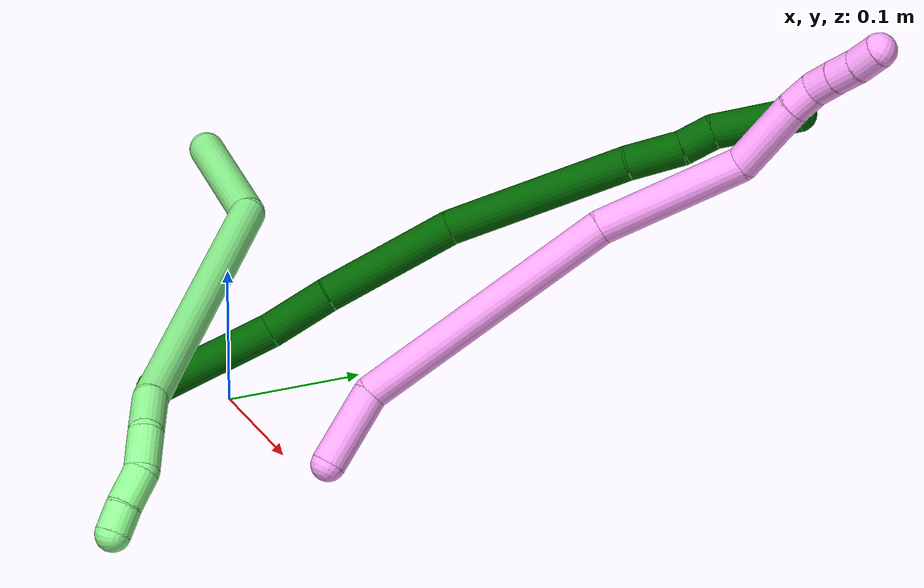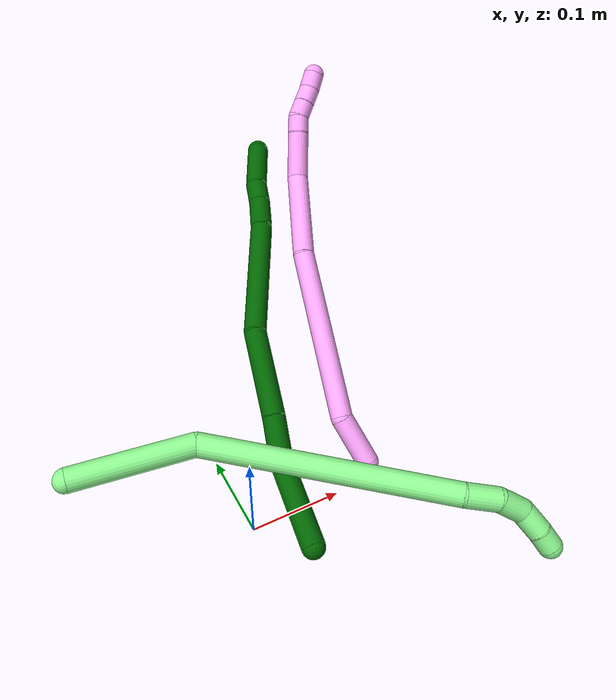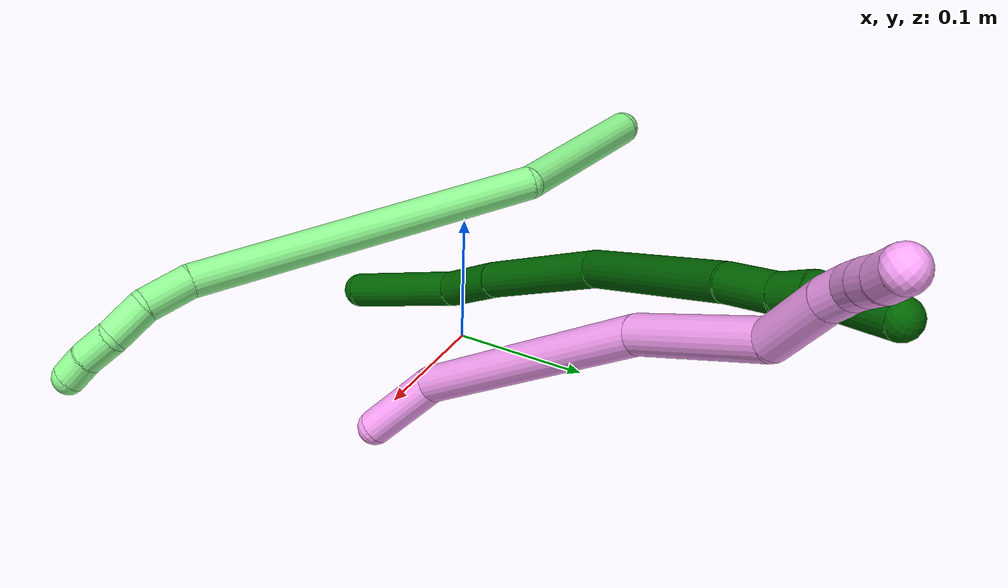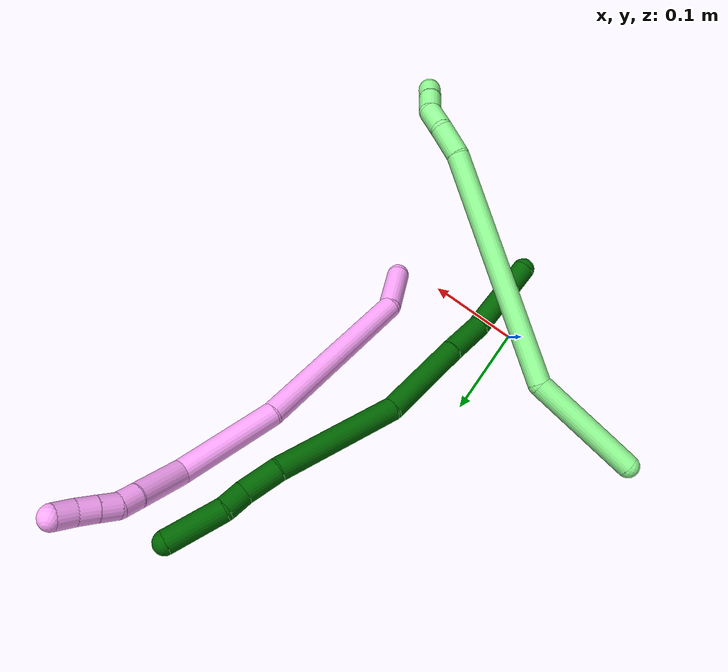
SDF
<sdf version="1.7">
 <world name="default">
  <model name="photoneo_s_sensor">
   <static>1</static>
   <pose>0 0 2 1.57079 1.57079 3.14159</pose>
   <link name="link">
    <inertial><mass>0.1</mass></inertial>
    <sensor name="sensor" type="depth">
     <update_rate>30</update_rate>
     <camera>
      <horizontal_fov>1.22</horizontal_fov>
      <image><width>1920</width><height>1200</height><format>B8G8R8</format></image>
      <clip><near>0.1</near><far>4</far></clip>
      <depth_camera><output>points</output></depth_camera>
     </camera>
     <plugin name="camera_plugin" filename="libgazebo_ros_depth_camera.so">
      <baseline>0.2</baseline>
      <alwaysOn>1</alwaysOn>
      <updateRate>0.0</updateRate>
      <cameraName>camera_ir</cameraName>
      <imageTopicName>/camera/color/image_raw</imageTopicName>
      <cameraInfoTopicName>/camera/color/camera_info</cameraInfoTopicName>
      <depthImageTopicName>/camera/depth/image_raw</depthImageTopicName>
      <depthImageCameraInfoTopicName>/camera/depth/camera_info</depthImageCameraInfoTopicName>
      <pointCloudTopicName>/camera/depth/points</pointCloudTopicName>
      <frameName>fr_optical</frameName>
      <pointCloudCutoff>0.1</pointCloudCutoff>
      <pointCloudCutoffMax>2.0</pointCloudCutoffMax>
      <distortionK1>0</distortionK1>
      <distortionK2>0</distortionK2>
      <distortionK3>0</distortionK3>
      <distortionT1>0</distortionT1>
      <distortionT2>0</distortionT2>
      <CxPrime>0</CxPrime>
      <Cx>0</Cx>
      <Cy>0</Cy>
      <focalLength>0</focalLength>
      <hackBaseline>0</hackBaseline>
     </plugin>
    </sensor>
   </link>
  </model>
  <model name="bin">
   <static>1</static>
   <link name="bottom">
    <collision name="collision-bottom">
     <pose>0 0 -0.01 0 -0 0</pose>
     <geometry><box><size>0.8 0.6 0.02</size></box></geometry>
     <surface>
      <friction><ode><mu>100</mu><mu2>100</mu2></ode></friction>
      <contact><collide_bitmask>65535</collide_bitmask></contact>
     </surface>
    </collision>
   </link>
   <link name="west_wall">
    <collision name="collision-west_wall">
     <pose>-0.41 0 0.1 0 -0 0</pose>
     <geometry><box><size>0.02 0.6 0.2</size></box></geometry>
     <surface>
      <friction><ode><mu>100</mu><mu2>100</mu2></ode></friction>
      <contact><collide_bitmask>65535</collide_bitmask></contact>
     </surface>
    </collision>
   </link>
   <link name="east_wall">
    <collision name="collision-east_wall">
     <pose>0.41 0 0.1 0 -0 0</pose>
     <geometry><box><size>0.02 0.6 0.2</size></box></geometry>
     <surface>
      <friction><ode><mu>100</mu><mu2>100</mu2></ode></friction>
      <contact><collide_bitmask>65535</collide_bitmask></contact>
     </surface>
    </collision>
   </link>
   <link name="south_wall">
    <collision name="collision-south_wall">
     <pose>0 -0.31 0.1 0 -0 0</pose>
     <geometry><box><size>0.8 0.02 0.2</size></box></geometry>
     <surface>
      <friction><ode><mu>100</mu><mu2>100</mu2></ode></friction>
      <contact><collide_bitmask>65535</collide_bitmask></contact>
     </surface>
    </collision>
   </link>
   <link name="north_wall">
    <collision name="collision-north_wall">
     <pose>0 0.31 0.1 0 -0 0</pose>
     <geometry><box><size>0.8 0.02 0.2</size></box></geometry>
     <surface>
      <friction><ode><mu>100</mu><mu2>100</mu2></ode></friction>
      <contact><collide_bitmask>65535</collide_bitmask></contact>
     </surface>
    </collision>
   </link>
  </model>
  <model name="4">
   <static>0</static>
   <link name="4">
    <collision name="collision-cylinder-e_1_1_4">
     <pose>-0.001779 -0.000878 -0.028773 3.11108 -0.061709 -2.22338</pose>
     <geometry><cylinder><radius>0.0125</radius><length>0.057683</length></cylinder></geometry>
     <surface>
      <friction><ode><mu>1.16</mu><mu2>1.16</mu2><slip1>0</slip1><slip2>0</slip2></ode></friction>
      <contact><ode><kp>1e+06</kp><kd>1</kd><max_vel>0</max_vel><min_depth>0.001</min_depth></ode></contact>
     </surface>
    </collision>
    <visual name="visual-cylinder-e_1_1_4">
     <pose>-0.001779 -0.000878 -0.028773 3.11108 -0.061709 -2.22338</pose>
     <geometry><cylinder><radius>0.0125</radius><length>0.057683</length></cylinder></geometry>
     <material><ambient>1 0.65098 0.996078 1</ambient></material>
    </visual>
    <collision name="collision-cylinder-e_2_4_5">
     <pose>-0.035442 -0.03974 -0.143108 2.7238 -0.328277 -1.32648</pose>
     <geometry><cylinder><radius>0.0125</radius><length>0.197789</length></cylinder></geometry>
     <surface>
      <friction><ode><mu>1.16</mu><mu2>1.16</mu2><slip1>0</slip1><slip2>0</slip2></ode></friction>
      <contact><ode><kp>1e+06</kp><kd>1</kd><max_vel>0</max_vel><min_depth>0.001</min_depth></ode></contact>
     </surface>
    </collision>
    <visual name="visual-cylinder-e_2_4_5">
     <pose>-0.035442 -0.03974 -0.143108 2.7238 -0.328277 -1.32648</pose>
     <geometry><cylinder><radius>0.0125</radius><length>0.197789</length></cylinder></geometry>
     <material><ambient>1 0.65098 0.996078 1</ambient></material>
    </visual>
    <collision name="collision-cylinder-e_3_5_6">
     <pose>-0.090907 -0.105612 -0.268307 2.52845 -0.452817 -1.25816</pose>
     <geometry><cylinder><radius>0.0125</radius><length>0.107797</length></cylinder></geometry>
     <surface>
      <friction><ode><mu>1.16</mu><mu2>1.16</mu2><slip1>0</slip1><slip2>0</slip2></ode></friction>
      <contact><ode><kp>1e+06</kp><kd>1</kd><max_vel>0</max_vel><min_depth>0.001</min_depth></ode></contact>
     </surface>
    </collision>
    <visual name="visual-cylinder-e_3_5_6">
     <pose>-0.090907 -0.105612 -0.268307 2.52845 -0.452817 -1.25816</pose>
     <geometry><cylinder><radius>0.0125</radius><length>0.107797</length></cylinder></geometry>
     <material><ambient>1 0.65098 0.996078 1</ambient></material>
    </visual>
    <collision name="collision-cylinder-e_4_6_7">
     <pose>-0.114594 -0.14868 -0.331256 2.56442 -0.003811 -0.012838</pose>
     <geometry><cylinder><radius>0.0125</radius><length>0.055634</length></cylinder></geometry>
     <surface>
      <friction><ode><mu>1.16</mu><mu2>1.16</mu2><slip1>0</slip1><slip2>0</slip2></ode></friction>
      <contact><ode><kp>1e+06</kp><kd>1</kd><max_vel>0</max_vel><min_depth>0.001</min_depth></ode></contact>
     </surface>
    </collision>
    <visual name="visual-cylinder-e_4_6_7">
     <pose>-0.114594 -0.14868 -0.331256 2.56442 -0.003811 -0.012838</pose>
     <geometry><cylinder><radius>0.0125</radius><length>0.055634</length></cylinder></geometry>
     <material><ambient>1 0.65098 0.996078 1</ambient></material>
    </visual>
    <collision name="collision-cylinder-e_5_7_8">
     <pose>-0.115831 -0.169605 -0.36287 2.53621 -0.111526 -0.353757</pose>
     <geometry><cylinder><radius>0.0125</radius><length>0.020322</length></cylinder></geometry>
     <surface>
      <friction><ode><mu>1.16</mu><mu2>1.16</mu2><slip1>0</slip1><slip2>0</slip2></ode></friction>
      <contact><ode><kp>1e+06</kp><kd>1</kd><max_vel>0</max_vel><min_depth>0.001</min_depth></ode></contact>
     </surface>
    </collision>
    <visual name="visual-cylinder-e_5_7_8">
     <pose>-0.115831 -0.169605 -0.36287 2.53621 -0.111526 -0.353757</pose>
     <geometry><cylinder><radius>0.0125</radius><length>0.020322</length></cylinder></geometry>
     <material><ambient>1 0.65098 0.996078 1</ambient></material>
    </visual>
    <collision name="collision-cylinder-e_6_8_9">
     <pose>-0.117913 -0.183461 -0.37696 2.19057 -0.095199 -0.184496</pose>
     <geometry><cylinder><radius>0.0125</radius><length>0.020017</length></cylinder></geometry>
     <surface>
      <friction><ode><mu>1.16</mu><mu2>1.16</mu2><slip1>0</slip1><slip2>0</slip2></ode></friction>
      <contact><ode><kp>1e+06</kp><kd>1</kd><max_vel>0</max_vel><min_depth>0.001</min_depth></ode></contact>
     </surface>
    </collision>
    <visual name="visual-cylinder-e_6_8_9">
     <pose>-0.117913 -0.183461 -0.37696 2.19057 -0.095199 -0.184496</pose>
     <geometry><cylinder><radius>0.0125</radius><length>0.020017</length></cylinder></geometry>
     <material><ambient>1 0.65098 0.996078 1</ambient></material>
    </visual>
    <collision name="collision-cylinder-e_7_9_10">
     <pose>-0.120176 -0.199715 -0.388475 2.18377 -0.130995 -0.251317</pose>
     <geometry><cylinder><radius>0.0125</radius><length>0.020084</length></cylinder></geometry>
     <surface>
      <friction><ode><mu>1.16</mu><mu2>1.16</mu2><slip1>0</slip1><slip2>0</slip2></ode></friction>
      <contact><ode><kp>1e+06</kp><kd>1</kd><max_vel>0</max_vel><min_depth>0.001</min_depth></ode></contact>
     </surface>
    </collision>
    <visual name="visual-cylinder-e_7_9_10">
     <pose>-0.120176 -0.199715 -0.388475 2.18377 -0.130995 -0.251317</pose>
     <geometry><cylinder><radius>0.0125</radius><length>0.020084</length></cylinder></geometry>
     <material><ambient>1 0.65098 0.996078 1</ambient></material>
    </visual>
    <collision name="collision-cylinder-e_8_10_2">
     <pose>-0.122034 -0.215721 -0.400891 2.27564 -0.052848 -0.114236</pose>
     <geometry><cylinder><radius>0.0125</radius><length>0.020674</length></cylinder></geometry>
     <surface>
      <friction><ode><mu>1.16</mu><mu2>1.16</mu2><slip1>0</slip1><slip2>0</slip2></ode></friction>
      <contact><ode><kp>1e+06</kp><kd>1</kd><max_vel>0</max_vel><min_depth>0.001</min_depth></ode></contact>
     </surface>
    </collision>
    <visual name="visual-cylinder-e_8_10_2">
     <pose>-0.122034 -0.215721 -0.400891 2.27564 -0.052848 -0.114236</pose>
     <geometry><cylinder><radius>0.0125</radius><length>0.020674</length></cylinder></geometry>
     <material><ambient>1 0.65098 0.996078 1</ambient></material>
    </visual>
    <collision name="collision-sphere-2">
     <pose>-0.12258 -0.223584 -0.407579 0 -0 0</pose>
     <geometry><sphere><radius>0.0125</radius></sphere></geometry>
     <surface>
      <friction><ode><mu>1.16</mu><mu2>1.16</mu2><slip1>0</slip1><slip2>0</slip2></ode></friction>
      <contact><ode><kp>1e+06</kp><kd>1</kd><max_vel>0</max_vel><min_depth>0.001</min_depth></ode></contact>
     </surface>
    </collision>
    <visual name="visual-sphere-2">
     <pose>-0.12258 -0.223584 -0.407579 0 -0 0</pose>
     <geometry><sphere><radius>0.0125</radius></sphere></geometry>
     <material><ambient>1 0.65098 0.996078 1</ambient></material>
    </visual>
    <collision name="collision-sphere-10">
     <pose>-0.121488 -0.207858 -0.394203 0 -0 0</pose>
     <geometry><sphere><radius>0.0125</radius></sphere></geometry>
     <surface>
      <friction><ode><mu>1.16</mu><mu2>1.16</mu2><slip1>0</slip1><slip2>0</slip2></ode></friction>
      <contact><ode><kp>1e+06</kp><kd>1</kd><max_vel>0</max_vel><min_depth>0.001</min_depth></ode></contact>
     </surface>
    </collision>
    <visual name="visual-sphere-10">
     <pose>-0.121488 -0.207858 -0.394203 0 -0 0</pose>
     <geometry><sphere><radius>0.0125</radius></sphere></geometry>
     <material><ambient>1 0.65098 0.996078 1</ambient></material>
    </visual>
    <collision name="collision-sphere-9">
     <pose>-0.118864 -0.191571 -0.382747 0 -0 0</pose>
     <geometry><sphere><radius>0.0125</radius></sphere></geometry>
     <surface>
      <friction><ode><mu>1.16</mu><mu2>1.16</mu2><slip1>0</slip1><slip2>0</slip2></ode></friction>
      <contact><ode><kp>1e+06</kp><kd>1</kd><max_vel>0</max_vel><min_depth>0.001</min_depth></ode></contact>
     </surface>
    </collision>
    <visual name="visual-sphere-9">
     <pose>-0.118864 -0.191571 -0.382747 0 -0 0</pose>
     <geometry><sphere><radius>0.0125</radius></sphere></geometry>
     <material><ambient>1 0.65098 0.996078 1</ambient></material>
    </visual>
    <collision name="collision-sphere-4">
     <pose>-0.003557 -0.001756 -0.057547 0 -0 0</pose>
     <geometry><sphere><radius>0.0125</radius></sphere></geometry>
     <surface>
      <friction><ode><mu>1.16</mu><mu2>1.16</mu2><slip1>0</slip1><slip2>0</slip2></ode></friction>
      <contact><ode><kp>1e+06</kp><kd>1</kd><max_vel>0</max_vel><min_depth>0.001</min_depth></ode></contact>
     </surface>
    </collision>
    <visual name="visual-sphere-4">
     <pose>-0.003557 -0.001756 -0.057547 0 -0 0</pose>
     <geometry><sphere><radius>0.0125</radius></sphere></geometry>
     <material><ambient>1 0.65098 0.996078 1</ambient></material>
    </visual>
    <collision name="collision-sphere-1">
     <geometry><sphere><radius>0.0125</radius></sphere></geometry>
     <surface>
      <friction><ode><mu>1.16</mu><mu2>1.16</mu2><slip1>0</slip1><slip2>0</slip2></ode></friction>
      <contact><ode><kp>1e+06</kp><kd>1</kd><max_vel>0</max_vel><min_depth>0.001</min_depth></ode></contact>
     </surface>
    </collision>
    <visual name="visual-sphere-1">
     <geometry><sphere><radius>0.0125</radius></sphere></geometry>
     <material><ambient>1 0.65098 0.996078 1</ambient></material>
    </visual>
    <collision name="collision-sphere-8">
     <pose>-0.116962 -0.175351 -0.371173 0 -0 0</pose>
     <geometry><sphere><radius>0.0125</radius></sphere></geometry>
     <surface>
      <friction><ode><mu>1.16</mu><mu2>1.16</mu2><slip1>0</slip1><slip2>0</slip2></ode></friction>
      <contact><ode><kp>1e+06</kp><kd>1</kd><max_vel>0</max_vel><min_depth>0.001</min_depth></ode></contact>
     </surface>
    </collision>
    <visual name="visual-sphere-8">
     <pose>-0.116962 -0.175351 -0.371173 0 -0 0</pose>
     <geometry><sphere><radius>0.0125</radius></sphere></geometry>
     <material><ambient>1 0.65098 0.996078 1</ambient></material>
    </visual>
    <collision name="collision-sphere-5">
     <pose>-0.067327 -0.077723 -0.228669 0 -0 0</pose>
     <geometry><sphere><radius>0.0125</radius></sphere></geometry>
     <surface>
      <friction><ode><mu>1.16</mu><mu2>1.16</mu2><slip1>0</slip1><slip2>0</slip2></ode></friction>
      <contact><ode><kp>1e+06</kp><kd>1</kd><max_vel>0</max_vel><min_depth>0.001</min_depth></ode></contact>
     </surface>
    </collision>
    <visual name="visual-sphere-5">
     <pose>-0.067327 -0.077723 -0.228669 0 -0 0</pose>
     <geometry><sphere><radius>0.0125</radius></sphere></geometry>
     <material><ambient>1 0.65098 0.996078 1</ambient></material>
    </visual>
    <collision name="collision-sphere-6">
     <pose>-0.114488 -0.133502 -0.307945 0 -0 0</pose>
     <geometry><sphere><radius>0.0125</radius></sphere></geometry>
     <surface>
      <friction><ode><mu>1.16</mu><mu2>1.16</mu2><slip1>0</slip1><slip2>0</slip2></ode></friction>
      <contact><ode><kp>1e+06</kp><kd>1</kd><max_vel>0</max_vel><min_depth>0.001</min_depth></ode></contact>
     </surface>
    </collision>
    <visual name="visual-sphere-6">
     <pose>-0.114488 -0.133502 -0.307945 0 -0 0</pose>
     <geometry><sphere><radius>0.0125</radius></sphere></geometry>
     <material><ambient>1 0.65098 0.996078 1</ambient></material>
    </visual>
    <collision name="collision-sphere-7">
     <pose>-0.1147 -0.163858 -0.354566 0 -0 0</pose>
     <geometry><sphere><radius>0.0125</radius></sphere></geometry>
     <surface>
      <friction><ode><mu>1.16</mu><mu2>1.16</mu2><slip1>0</slip1><slip2>0</slip2></ode></friction>
      <contact><ode><kp>1e+06</kp><kd>1</kd><max_vel>0</max_vel><min_depth>0.001</min_depth></ode></contact>
     </surface>
    </collision>
    <visual name="visual-sphere-7">
     <pose>-0.1147 -0.163858 -0.354566 0 -0 0</pose>
     <geometry><sphere><radius>0.0125</radius></sphere></geometry>
     <material><ambient>1 0.65098 0.996078 1</ambient></material>
    </visual>
    <inertial>
     <pose>-0.065876 -0.086314 -0.216654 0 -0 0</pose>
     <mass>0.5</mass>
     <inertia>
      <ixx>-0.000527</ixx>
      <ixy>0</ixy>
      <ixz>0</ixz>
      <iyy>-0.000795</iyy>
      <iyz>0</iyz>
      <izz>0.000549</izz>
     </inertia>
    </inertial>
   </link>
   <pose>0.147704 0.014171 0.011496 -2.78512 -0.637205 -1.72332</pose>
  </model>
  <model name="6">
   <static>0</static>
   <link name="6">
    <collision name="collision-cylinder-e_1_1_4">
     <pose>-0.001511 0.028744 0.035469 -0.681052 -0.033079 0.011722</pose>
     <geometry><cylinder><radius>0.0125</radius><length>0.091357</length></cylinder></geometry>
     <surface>
      <friction><ode><mu>1.16</mu><mu2>1.16</mu2><slip1>0</slip1><slip2>0</slip2></ode></friction>
      <contact><ode><kp>1e+06</kp><kd>1</kd><max_vel>0</max_vel><min_depth>0.001</min_depth></ode></contact>
     </surface>
    </collision>
    <visual name="visual-cylinder-e_1_1_4">
     <pose>-0.001511 0.028744 0.035469 -0.681052 -0.033079 0.011722</pose>
     <geometry><cylinder><radius>0.0125</radius><length>0.091357</length></cylinder></geometry>
     <material><ambient>0 0.392157 0.003922 1</ambient></material>
    </visual>
    <collision name="collision-cylinder-e_2_4_5">
     <pose>-0.001401 0.068081 0.092804 -0.451111 0.066603 -0.015288</pose>
     <geometry><cylinder><radius>0.0125</radius><length>0.048702</length></cylinder></geometry>
     <surface>
      <friction><ode><mu>1.16</mu><mu2>1.16</mu2><slip1>0</slip1><slip2>0</slip2></ode></friction>
      <contact><ode><kp>1e+06</kp><kd>1</kd><max_vel>0</max_vel><min_depth>0.001</min_depth></ode></contact>
     </surface>
    </collision>
    <visual name="visual-cylinder-e_2_4_5">
     <pose>-0.001401 0.068081 0.092804 -0.451111 0.066603 -0.015288</pose>
     <geometry><cylinder><radius>0.0125</radius><length>0.048702</length></cylinder></geometry>
     <material><ambient>0 0.392157 0.003922 1</ambient></material>
    </visual>
    <collision name="collision-cylinder-e_3_5_6">
     <pose>0.002961 0.103914 0.156896 -0.538771 0.055672 -0.015375</pose>
     <geometry><cylinder><radius>0.0125</radius><length>0.09854</length></cylinder></geometry>
     <surface>
      <friction><ode><mu>1.16</mu><mu2>1.16</mu2><slip1>0</slip1><slip2>0</slip2></ode></friction>
      <contact><ode><kp>1e+06</kp><kd>1</kd><max_vel>0</max_vel><min_depth>0.001</min_depth></ode></contact>
     </surface>
    </collision>
    <visual name="visual-cylinder-e_3_5_6">
     <pose>0.002961 0.103914 0.156896 -0.538771 0.055672 -0.015375</pose>
     <geometry><cylinder><radius>0.0125</radius><length>0.09854</length></cylinder></geometry>
     <material><ambient>0 0.392157 0.003922 1</ambient></material>
    </visual>
    <collision name="collision-cylinder-e_4_6_7">
     <pose>0.026738 0.160218 0.255777 -0.501517 0.314728 -0.081245</pose>
     <geometry><cylinder><radius>0.0125</radius><length>0.135903</length></cylinder></geometry>
     <surface>
      <friction><ode><mu>1.16</mu><mu2>1.16</mu2><slip1>0</slip1><slip2>0</slip2></ode></friction>
      <contact><ode><kp>1e+06</kp><kd>1</kd><max_vel>0</max_vel><min_depth>0.001</min_depth></ode></contact>
     </surface>
    </collision>
    <visual name="visual-cylinder-e_4_6_7">
     <pose>0.026738 0.160218 0.255777 -0.501517 0.314728 -0.081245</pose>
     <geometry><cylinder><radius>0.0125</radius><length>0.135903</length></cylinder></geometry>
     <material><ambient>0 0.392157 0.003922 1</ambient></material>
    </visual>
    <collision name="collision-cylinder-e_5_7_8">
     <pose>0.052821 0.203129 0.327458 -0.667754 0.257932 -0.089906</pose>
     <geometry><cylinder><radius>0.0125</radius><length>0.039577</length></cylinder></geometry>
     <surface>
      <friction><ode><mu>1.16</mu><mu2>1.16</mu2><slip1>0</slip1><slip2>0</slip2></ode></friction>
      <contact><ode><kp>1e+06</kp><kd>1</kd><max_vel>0</max_vel><min_depth>0.001</min_depth></ode></contact>
     </surface>
    </collision>
    <visual name="visual-cylinder-e_5_7_8">
     <pose>0.052821 0.203129 0.327458 -0.667754 0.257932 -0.089906</pose>
     <geometry><cylinder><radius>0.0125</radius><length>0.039577</length></cylinder></geometry>
     <material><ambient>0 0.392157 0.003922 1</ambient></material>
    </visual>
    <collision name="collision-cylinder-e_6_8_9">
     <pose>0.05908 0.221093 0.353056 -0.524392 0.098859 -0.026551</pose>
     <geometry><cylinder><radius>0.0125</radius><length>0.024549</length></cylinder></geometry>
     <surface>
      <friction><ode><mu>1.16</mu><mu2>1.16</mu2><slip1>0</slip1><slip2>0</slip2></ode></friction>
      <contact><ode><kp>1e+06</kp><kd>1</kd><max_vel>0</max_vel><min_depth>0.001</min_depth></ode></contact>
     </surface>
    </collision>
    <visual name="visual-cylinder-e_6_8_9">
     <pose>0.05908 0.221093 0.353056 -0.524392 0.098859 -0.026551</pose>
     <geometry><cylinder><radius>0.0125</radius><length>0.024549</length></cylinder></geometry>
     <material><ambient>0 0.392157 0.003922 1</ambient></material>
    </visual>
    <collision name="collision-cylinder-e_7_9_2">
     <pose>0.070837 0.245304 0.386056 -0.678918 0.350827 -0.125011</pose>
     <geometry><cylinder><radius>0.0125</radius><length>0.061371</length></cylinder></geometry>
     <surface>
      <friction><ode><mu>1.16</mu><mu2>1.16</mu2><slip1>0</slip1><slip2>0</slip2></ode></friction>
      <contact><ode><kp>1e+06</kp><kd>1</kd><max_vel>0</max_vel><min_depth>0.001</min_depth></ode></contact>
     </surface>
    </collision>
    <visual name="visual-cylinder-e_7_9_2">
     <pose>0.070837 0.245304 0.386056 -0.678918 0.350827 -0.125011</pose>
     <geometry><cylinder><radius>0.0125</radius><length>0.061371</length></cylinder></geometry>
     <material><ambient>0 0.392157 0.003922 1</ambient></material>
    </visual>
    <collision name="collision-sphere-2">
     <pose>0.081383 0.2634 0.408482 0 -0 0</pose>
     <geometry><sphere><radius>0.0125</radius></sphere></geometry>
     <surface>
      <friction><ode><mu>1.16</mu><mu2>1.16</mu2><slip1>0</slip1><slip2>0</slip2></ode></friction>
      <contact><ode><kp>1e+06</kp><kd>1</kd><max_vel>0</max_vel><min_depth>0.001</min_depth></ode></contact>
     </surface>
    </collision>
    <visual name="visual-sphere-2">
     <pose>0.081383 0.2634 0.408482 0 -0 0</pose>
     <geometry><sphere><radius>0.0125</radius></sphere></geometry>
     <material><ambient>0 0.392157 0.003922 1</ambient></material>
    </visual>
    <collision name="collision-sphere-9">
     <pose>0.060291 0.227209 0.363629 0 -0 0</pose>
     <geometry><sphere><radius>0.0125</radius></sphere></geometry>
     <surface>
      <friction><ode><mu>1.16</mu><mu2>1.16</mu2><slip1>0</slip1><slip2>0</slip2></ode></friction>
      <contact><ode><kp>1e+06</kp><kd>1</kd><max_vel>0</max_vel><min_depth>0.001</min_depth></ode></contact>
     </surface>
    </collision>
    <visual name="visual-sphere-9">
     <pose>0.060291 0.227209 0.363629 0 -0 0</pose>
     <geometry><sphere><radius>0.0125</radius></sphere></geometry>
     <material><ambient>0 0.392157 0.003922 1</ambient></material>
    </visual>
    <collision name="collision-sphere-4">
     <pose>-0.003021 0.057488 0.070938 0 -0 0</pose>
     <geometry><sphere><radius>0.0125</radius></sphere></geometry>
     <surface>
      <friction><ode><mu>1.16</mu><mu2>1.16</mu2><slip1>0</slip1><slip2>0</slip2></ode></friction>
      <contact><ode><kp>1e+06</kp><kd>1</kd><max_vel>0</max_vel><min_depth>0.001</min_depth></ode></contact>
     </surface>
    </collision>
    <visual name="visual-sphere-4">
     <pose>-0.003021 0.057488 0.070938 0 -0 0</pose>
     <geometry><sphere><radius>0.0125</radius></sphere></geometry>
     <material><ambient>0 0.392157 0.003922 1</ambient></material>
    </visual>
    <collision name="collision-sphere-1">
     <geometry><sphere><radius>0.0125</radius></sphere></geometry>
     <surface>
      <friction><ode><mu>1.16</mu><mu2>1.16</mu2><slip1>0</slip1><slip2>0</slip2></ode></friction>
      <contact><ode><kp>1e+06</kp><kd>1</kd><max_vel>0</max_vel><min_depth>0.001</min_depth></ode></contact>
     </surface>
    </collision>
    <visual name="visual-sphere-1">
     <geometry><sphere><radius>0.0125</radius></sphere></geometry>
     <material><ambient>0 0.392157 0.003922 1</ambient></material>
    </visual>
    <collision name="collision-sphere-8">
     <pose>0.057868 0.214977 0.342482 0 -0 0</pose>
     <geometry><sphere><radius>0.0125</radius></sphere></geometry>
     <surface>
      <friction><ode><mu>1.16</mu><mu2>1.16</mu2><slip1>0</slip1><slip2>0</slip2></ode></friction>
      <contact><ode><kp>1e+06</kp><kd>1</kd><max_vel>0</max_vel><min_depth>0.001</min_depth></ode></contact>
     </surface>
    </collision>
    <visual name="visual-sphere-8">
     <pose>0.057868 0.214977 0.342482 0 -0 0</pose>
     <geometry><sphere><radius>0.0125</radius></sphere></geometry>
     <material><ambient>0 0.392157 0.003922 1</ambient></material>
    </visual>
    <collision name="collision-sphere-5">
     <pose>0.00022 0.078674 0.114671 0 -0 0</pose>
     <geometry><sphere><radius>0.0125</radius></sphere></geometry>
     <surface>
      <friction><ode><mu>1.16</mu><mu2>1.16</mu2><slip1>0</slip1><slip2>0</slip2></ode></friction>
      <contact><ode><kp>1e+06</kp><kd>1</kd><max_vel>0</max_vel><min_depth>0.001</min_depth></ode></contact>
     </surface>
    </collision>
    <visual name="visual-sphere-5">
     <pose>0.00022 0.078674 0.114671 0 -0 0</pose>
     <geometry><sphere><radius>0.0125</radius></sphere></geometry>
     <material><ambient>0 0.392157 0.003922 1</ambient></material>
    </visual>
    <collision name="collision-sphere-6">
     <pose>0.005703 0.129154 0.19912 0 -0 0</pose>
     <geometry><sphere><radius>0.0125</radius></sphere></geometry>
     <surface>
      <friction><ode><mu>1.16</mu><mu2>1.16</mu2><slip1>0</slip1><slip2>0</slip2></ode></friction>
      <contact><ode><kp>1e+06</kp><kd>1</kd><max_vel>0</max_vel><min_depth>0.001</min_depth></ode></contact>
     </surface>
    </collision>
    <visual name="visual-sphere-6">
     <pose>0.005703 0.129154 0.19912 0 -0 0</pose>
     <geometry><sphere><radius>0.0125</radius></sphere></geometry>
     <material><ambient>0 0.392157 0.003922 1</ambient></material>
    </visual>
    <collision name="collision-sphere-7">
     <pose>0.047773 0.191281 0.312434 0 -0 0</pose>
     <geometry><sphere><radius>0.0125</radius></sphere></geometry>
     <surface>
      <friction><ode><mu>1.16</mu><mu2>1.16</mu2><slip1>0</slip1><slip2>0</slip2></ode></friction>
      <contact><ode><kp>1e+06</kp><kd>1</kd><max_vel>0</max_vel><min_depth>0.001</min_depth></ode></contact>
     </surface>
    </collision>
    <visual name="visual-sphere-7">
     <pose>0.047773 0.191281 0.312434 0 -0 0</pose>
     <geometry><sphere><radius>0.0125</radius></sphere></geometry>
     <material><ambient>0 0.392157 0.003922 1</ambient></material>
    </visual>
    <inertial>
     <pose>0.023215 0.132954 0.206603 0 -0 0</pose>
     <mass>0.5</mass>
     <inertia>
      <ixx>0.00038</ixx>
      <ixy>0</ixy>
      <ixz>0</ixz>
      <iyy>0.000349</iyy>
      <iyz>0</iyz>
      <izz>-0.000253</izz>
     </inertia>
    </inertial>
   </link>
   <pose>0.033386 -0.070697 0.036492 -0.53004 0.240138 -0.042556</pose>
  </model>
  <model name="13">
   <static>0</static>
   <link name="13">
    <collision name="collision-cylinder-e_1_1_4">
     <pose>0.023482 0.001567 0.058029 -0.027003 0.384391 -0.005255</pose>
     <geometry><cylinder><radius>0.0125</radius><length>0.125239</length></cylinder></geometry>
     <surface>
      <friction><ode><mu>1.16</mu><mu2>1.16</mu2><slip1>0</slip1><slip2>0</slip2></ode></friction>
      <contact><ode><kp>1e+06</kp><kd>1</kd><max_vel>0</max_vel><min_depth>0.001</min_depth></ode></contact>
     </surface>
    </collision>
    <visual name="visual-cylinder-e_1_1_4">
     <pose>0.023482 0.001567 0.058029 -0.027003 0.384391 -0.005255</pose>
     <geometry><cylinder><radius>0.0125</radius><length>0.125239</length></cylinder></geometry>
     <material><ambient>0.564706 0.984314 0.572549 1</ambient></material>
    </visual>
    <collision name="collision-cylinder-e_2_4_5">
     <pose>0.147921 0.018638 0.197757 -0.187536 0.881781 -0.088694</pose>
     <geometry><cylinder><radius>0.0125</radius><length>0.26159</length></cylinder></geometry>
     <surface>
      <friction><ode><mu>1.16</mu><mu2>1.16</mu2><slip1>0</slip1><slip2>0</slip2></ode></friction>
      <contact><ode><kp>1e+06</kp><kd>1</kd><max_vel>0</max_vel><min_depth>0.001</min_depth></ode></contact>
     </surface>
    </collision>
    <visual name="visual-cylinder-e_2_4_5">
     <pose>0.147921 0.018638 0.197757 -0.187536 0.881781 -0.088694</pose>
     <geometry><cylinder><radius>0.0125</radius><length>0.26159</length></cylinder></geometry>
     <material><ambient>0.564706 0.984314 0.572549 1</ambient></material>
    </visual>
    <collision name="collision-cylinder-e_3_5_6">
     <pose>0.260189 0.038788 0.292596 -0.339845 0.681697 -0.121564</pose>
     <geometry><cylinder><radius>0.0125</radius><length>0.0359</length></cylinder></geometry>
     <surface>
      <friction><ode><mu>1.16</mu><mu2>1.16</mu2><slip1>0</slip1><slip2>0</slip2></ode></friction>
      <contact><ode><kp>1e+06</kp><kd>1</kd><max_vel>0</max_vel><min_depth>0.001</min_depth></ode></contact>
     </surface>
    </collision>
    <visual name="visual-cylinder-e_3_5_6">
     <pose>0.260189 0.038788 0.292596 -0.339845 0.681697 -0.121564</pose>
     <geometry><cylinder><radius>0.0125</radius><length>0.0359</length></cylinder></geometry>
     <material><ambient>0.564706 0.984314 0.572549 1</ambient></material>
    </visual>
    <collision name="collision-cylinder-e_4_6_7">
     <pose>0.279997 0.052206 0.314448 -0.788916 0.602234 -0.257131</pose>
     <geometry><cylinder><radius>0.0125</radius><length>0.030002</length></cylinder></geometry>
     <surface>
      <friction><ode><mu>1.16</mu><mu2>1.16</mu2><slip1>0</slip1><slip2>0</slip2></ode></friction>
      <contact><ode><kp>1e+06</kp><kd>1</kd><max_vel>0</max_vel><min_depth>0.001</min_depth></ode></contact>
     </surface>
    </collision>
    <visual name="visual-cylinder-e_4_6_7">
     <pose>0.279997 0.052206 0.314448 -0.788916 0.602234 -0.257131</pose>
     <geometry><cylinder><radius>0.0125</radius><length>0.030002</length></cylinder></geometry>
     <material><ambient>0.564706 0.984314 0.572549 1</ambient></material>
    </visual>
    <collision name="collision-cylinder-e_5_7_8">
     <pose>0.298214 0.069865 0.325813 -1.2805 0.808742 -0.617225</pose>
     <geometry><cylinder><radius>0.0125</radius><length>0.02687</length></cylinder></geometry>
     <surface>
      <friction><ode><mu>1.16</mu><mu2>1.16</mu2><slip1>0</slip1><slip2>0</slip2></ode></friction>
      <contact><ode><kp>1e+06</kp><kd>1</kd><max_vel>0</max_vel><min_depth>0.001</min_depth></ode></contact>
     </surface>
    </collision>
    <visual name="visual-cylinder-e_5_7_8">
     <pose>0.298214 0.069865 0.325813 -1.2805 0.808742 -0.617225</pose>
     <geometry><cylinder><radius>0.0125</radius><length>0.02687</length></cylinder></geometry>
     <material><ambient>0.564706 0.984314 0.572549 1</ambient></material>
    </visual>
    <collision name="collision-cylinder-e_6_8_2">
     <pose>0.314349 0.086448 0.330378 -1.32743 0.680333 -0.540071</pose>
     <geometry><cylinder><radius>0.0125</radius><length>0.020399</length></cylinder></geometry>
     <surface>
      <friction><ode><mu>1.16</mu><mu2>1.16</mu2><slip1>0</slip1><slip2>0</slip2></ode></friction>
      <contact><ode><kp>1e+06</kp><kd>1</kd><max_vel>0</max_vel><min_depth>0.001</min_depth></ode></contact>
     </surface>
    </collision>
    <visual name="visual-cylinder-e_6_8_2">
     <pose>0.314349 0.086448 0.330378 -1.32743 0.680333 -0.540071</pose>
     <geometry><cylinder><radius>0.0125</radius><length>0.020399</length></cylinder></geometry>
     <material><ambient>0.564706 0.984314 0.572549 1</ambient></material>
    </visual>
    <collision name="collision-sphere-2">
     <pose>0.320765 0.094143 0.332289 0 -0 0</pose>
     <geometry><sphere><radius>0.0125</radius></sphere></geometry>
     <surface>
      <friction><ode><mu>1.16</mu><mu2>1.16</mu2><slip1>0</slip1><slip2>0</slip2></ode></friction>
      <contact><ode><kp>1e+06</kp><kd>1</kd><max_vel>0</max_vel><min_depth>0.001</min_depth></ode></contact>
     </surface>
    </collision>
    <visual name="visual-sphere-2">
     <pose>0.320765 0.094143 0.332289 0 -0 0</pose>
     <geometry><sphere><radius>0.0125</radius></sphere></geometry>
     <material><ambient>0.564706 0.984314 0.572549 1</ambient></material>
    </visual>
    <collision name="collision-sphere-4">
     <pose>0.046964 0.003135 0.116058 0 -0 0</pose>
     <geometry><sphere><radius>0.0125</radius></sphere></geometry>
     <surface>
      <friction><ode><mu>1.16</mu><mu2>1.16</mu2><slip1>0</slip1><slip2>0</slip2></ode></friction>
      <contact><ode><kp>1e+06</kp><kd>1</kd><max_vel>0</max_vel><min_depth>0.001</min_depth></ode></contact>
     </surface>
    </collision>
    <visual name="visual-sphere-4">
     <pose>0.046964 0.003135 0.116058 0 -0 0</pose>
     <geometry><sphere><radius>0.0125</radius></sphere></geometry>
     <material><ambient>0.564706 0.984314 0.572549 1</ambient></material>
    </visual>
    <collision name="collision-sphere-1">
     <geometry><sphere><radius>0.0125</radius></sphere></geometry>
     <surface>
      <friction><ode><mu>1.16</mu><mu2>1.16</mu2><slip1>0</slip1><slip2>0</slip2></ode></friction>
      <contact><ode><kp>1e+06</kp><kd>1</kd><max_vel>0</max_vel><min_depth>0.001</min_depth></ode></contact>
     </surface>
    </collision>
    <visual name="visual-sphere-1">
     <geometry><sphere><radius>0.0125</radius></sphere></geometry>
     <material><ambient>0.564706 0.984314 0.572549 1</ambient></material>
    </visual>
    <collision name="collision-sphere-8">
     <pose>0.307933 0.078753 0.328468 0 -0 0</pose>
     <geometry><sphere><radius>0.0125</radius></sphere></geometry>
     <surface>
      <friction><ode><mu>1.16</mu><mu2>1.16</mu2><slip1>0</slip1><slip2>0</slip2></ode></friction>
      <contact><ode><kp>1e+06</kp><kd>1</kd><max_vel>0</max_vel><min_depth>0.001</min_depth></ode></contact>
     </surface>
    </collision>
    <visual name="visual-sphere-8">
     <pose>0.307933 0.078753 0.328468 0 -0 0</pose>
     <geometry><sphere><radius>0.0125</radius></sphere></geometry>
     <material><ambient>0.564706 0.984314 0.572549 1</ambient></material>
    </visual>
    <collision name="collision-sphere-5">
     <pose>0.248878 0.034142 0.279455 0 -0 0</pose>
     <geometry><sphere><radius>0.0125</radius></sphere></geometry>
     <surface>
      <friction><ode><mu>1.16</mu><mu2>1.16</mu2><slip1>0</slip1><slip2>0</slip2></ode></friction>
      <contact><ode><kp>1e+06</kp><kd>1</kd><max_vel>0</max_vel><min_depth>0.001</min_depth></ode></contact>
     </surface>
    </collision>
    <visual name="visual-sphere-5">
     <pose>0.248878 0.034142 0.279455 0 -0 0</pose>
     <geometry><sphere><radius>0.0125</radius></sphere></geometry>
     <material><ambient>0.564706 0.984314 0.572549 1</ambient></material>
    </visual>
    <collision name="collision-sphere-6">
     <pose>0.271499 0.043434 0.305737 0 -0 0</pose>
     <geometry><sphere><radius>0.0125</radius></sphere></geometry>
     <surface>
      <friction><ode><mu>1.16</mu><mu2>1.16</mu2><slip1>0</slip1><slip2>0</slip2></ode></friction>
      <contact><ode><kp>1e+06</kp><kd>1</kd><max_vel>0</max_vel><min_depth>0.001</min_depth></ode></contact>
     </surface>
    </collision>
    <visual name="visual-sphere-6">
     <pose>0.271499 0.043434 0.305737 0 -0 0</pose>
     <geometry><sphere><radius>0.0125</radius></sphere></geometry>
     <material><ambient>0.564706 0.984314 0.572549 1</ambient></material>
    </visual>
    <collision name="collision-sphere-7">
     <pose>0.288495 0.060978 0.323158 0 -0 0</pose>
     <geometry><sphere><radius>0.0125</radius></sphere></geometry>
     <surface>
      <friction><ode><mu>1.16</mu><mu2>1.16</mu2><slip1>0</slip1><slip2>0</slip2></ode></friction>
      <contact><ode><kp>1e+06</kp><kd>1</kd><max_vel>0</max_vel><min_depth>0.001</min_depth></ode></contact>
     </surface>
    </collision>
    <visual name="visual-sphere-7">
     <pose>0.288495 0.060978 0.323158 0 -0 0</pose>
     <geometry><sphere><radius>0.0125</radius></sphere></geometry>
     <material><ambient>0.564706 0.984314 0.572549 1</ambient></material>
    </visual>
    <inertial>
     <pose>0.147604 0.023343 0.188862 0 -0 0</pose>
     <mass>0.5</mass>
     <inertia>
      <ixx>0.001053</ixx>
      <ixy>0</ixy>
      <ixz>0</ixz>
      <iyy>0.001587</iyy>
      <iyz>0</iyz>
      <izz>-0.001393</izz>
     </inertia>
    </inertial>
   </link>
   <pose>-0.16451 0.050399 0.121044 -1.52407 0.01332 -1.33115</pose>
  </model>
 </world>
</sdf>
